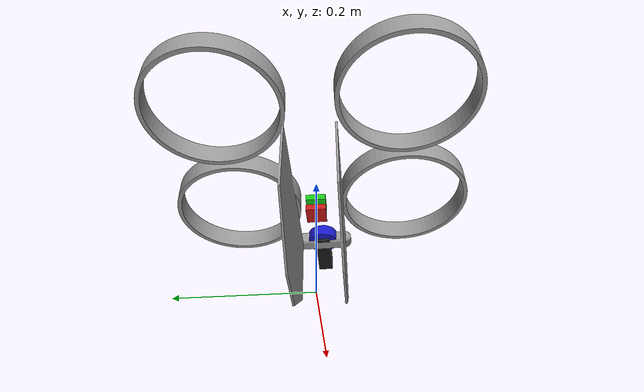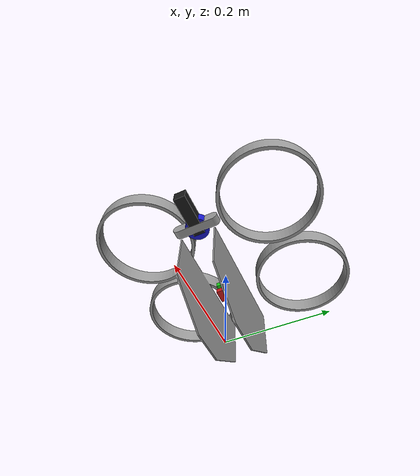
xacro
<?xml version="1.0"?>
<robot xmlns:xacro="http://www.ros.org/wiki/xacro" name="transformer">
  <!-- Base link -->
  <link name="base_link">
    <!-- Visual mesh of the drone (replace scale/origin as needed to align) -->
    <visual>
      <geometry>
        <mesh filename="package://transformer_description/model/transformer_model.stl" scale="1 1 1"/>
      </geometry>
      <!-- Rotate model 90 degrees around Z axis -->
      <origin xyz="0 0 0" rpy="0 0 1.57079632679"/>
      <material name="gray"><color rgba="0.6 0.6 0.6 1.0"/></material>
    </visual>
    <!-- Optional: keep a simple collision; you can swap to a simplified STL later -->
    <collision>
      <geometry>
        <mesh filename="package://transformer_description/model/transformer_model.stl" scale="1 1 1"/>
      </geometry>
      <!-- Match visual rotation for collision -->
      <origin xyz="0 0 0" rpy="0 0 1.57079632679"/>
    </collision>
  </link>

  <!-- Parameters for sensor poses (placeholders; override via launch or set params) -->
  <xacro:property name="msp_imu_xyz" value="0.0 0.0 0.14"/>
  <xacro:property name="msp_imu_rpy" value="0.0 0.0 0.0"/>

  <xacro:property name="n100_imu_xyz" value="0.0 0.0 0.16"/>
  <xacro:property name="n100_imu_rpy" value="0.0 0.0 0.0"/>

  <xacro:property name="gps_xyz" value="0.1415 0.0 0.2"/>
  <xacro:property name="gps_rpy" value="0.0 0.0 0.0"/>

  <xacro:property name="d435i_xyz" value="0.175 0.0 0.2"/>
  <xacro:property name="d435i_rpy" value="0.0 0.0 0.0"/>

  <!-- MSP IMU link -->
  <link name="msp_imu_link">
    <visual>
      <geometry>
        <box size="0.03 0.03 0.01"/>
      </geometry>
      <material name="red"><color rgba="0.8 0.1 0.1 1.0"/></material>
    </visual>
  </link>
  <joint name="msp_imu_joint" type="fixed">
    <parent link="base_link"/>
    <child link="msp_imu_link"/>
    <origin xyz="${msp_imu_xyz}" rpy="${msp_imu_rpy}"/>
  </joint>

  <!-- N100 IMU link -->
  <link name="n100_imu_link">
    <visual>
      <geometry>
        <box size="0.03 0.03 0.01"/>
      </geometry>
      <material name="green"><color rgba="0.1 0.8 0.1 1.0"/></material>
    </visual>
  </link>
  <joint name="n100_imu_joint" type="fixed">
    <parent link="base_link"/>
    <child link="n100_imu_link"/>
    <origin xyz="${n100_imu_xyz}" rpy="${n100_imu_rpy}"/>
  </joint>

  <!-- GPS module link -->
  <link name="gps_link">
    <visual>
      <geometry>
        <cylinder length="0.02" radius="0.025"/>
      </geometry>
      <material name="blue"><color rgba="0.1 0.1 0.8 1.0"/></material>
    </visual>
  </link>
  <joint name="gps_joint" type="fixed">
    <parent link="base_link"/>
    <child link="gps_link"/>
    <origin xyz="${gps_xyz}" rpy="${gps_rpy}"/>
  </joint>

  <!-- Intel RealSense D435i base link (aligned with realsense2_camera frame names) -->
  <link name="camera_D435I_link">
    <visual>
      <geometry>
        <box size="0.09 0.025 0.025"/>
      </geometry>
      <material name="black"><color rgba="0.1 0.1 0.1 1.0"/></material>
    </visual>
  </link>
  <joint name="camera_D435I_joint" type="fixed">
    <parent link="base_link"/>
    <child link="camera_D435I_link"/>
    <origin xyz="${d435i_xyz}" rpy="${d435i_rpy}"/>
  </joint>
</robot>
